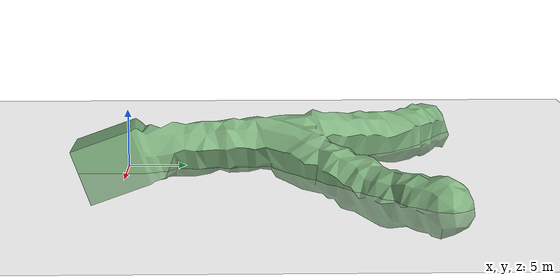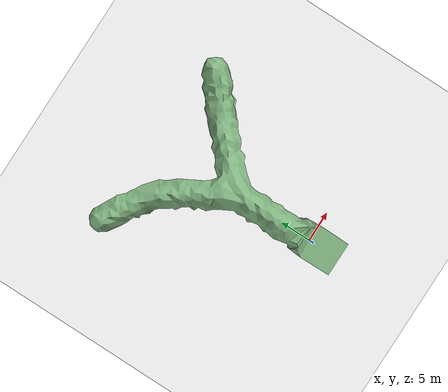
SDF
<sdf version="1.6">
 <world name="default">
  <scene><background>0.1 0.1 0.1 1</background><shadows>1</shadows><ambient>0.4 0.4 0.4 1</ambient></scene>
  <physics name="default_physics" default="0" type="ode">
   <ode>
    <solver>
     <type>quick</type>
     <iters>10</iters>
     <sor>1.3</sor>
     <use_dynamic_moi_rescaling>0</use_dynamic_moi_rescaling>
    </solver>
    <constraints>
     <cfm>0</cfm>
     <erp>0.2</erp>
     <contact_max_correcting_vel>10</contact_max_correcting_vel>
     <contact_surface_layer>0.001</contact_surface_layer>
    </constraints>
   </ode>
   <max_step_size>0.001</max_step_size>
   <real_time_factor>1</real_time_factor>
   <real_time_update_rate>1000</real_time_update_rate>
  </physics>
  <light name="directional_light_1" type="directional">
   <pose>0 20 20 0.1 0.1 0</pose>
   <diffuse>1 1 1 1</diffuse>
   <specular>1 1 1 1</specular>
   <attenuation><range>300</range></attenuation>
   <direction>0.1 0.1 -1</direction>
   <cast_shadows>0</cast_shadows>
  </light>
  <model name="y_tunnel">
   <pose>0.117183 -0.711964 -1.42665 0.34507 -0 0</pose>
   <static>1</static>
   <link name="y_tunnel_link">
    <collision name="y_tunnel_collision">
     <geometry><mesh><uri>model://y_tunnel/y_tunnel.dae</uri><scale>4 4 4</scale></mesh></geometry>
    </collision>
    <visual name="y_tunnel_visual">
     <geometry><mesh><uri>model://y_tunnel/y_tunnel.dae</uri><scale>4 4 4</scale></mesh></geometry>
     <cast_shadows>0</cast_shadows>
     <material>
      <ambient>0.3 0.5 0.3 1</ambient>
      <diffuse>0.5 0.7 0.5 1</diffuse>
      <specular>0.5 0.7 0.5 1</specular>
      <emissive>0 0 0 1</emissive>
     </material>
    </visual>
   </link>
  </model>
  <gravity>0 0 -9.81</gravity>
  <magnetic_field>6e-06 2.3e-05 -4.2e-05</magnetic_field>
  <atmosphere type="adiabatic"/>
  <spherical_coordinates>
   <surface_model>EARTH_WGS84</surface_model>
   <latitude_deg>0</latitude_deg>
   <longitude_deg>0</longitude_deg>
   <elevation>0</elevation>
   <heading_deg>0</heading_deg>
  </spherical_coordinates>
  <model name="ground_plane">
   <static>1</static>
   <link name="link">
    <collision name="collision">
     <geometry><plane><normal>0 0 1</normal><size>100 100</size></plane></geometry>
     <surface><friction><ode><mu>100</mu><mu2>50</mu2></ode></friction></surface>
    </collision>
    <visual name="visual">
     <cast_shadows>0</cast_shadows>
     <geometry><plane><normal>0 0 1</normal><size>100 100</size></plane></geometry>
     <material>
      <script><uri>file://media/materials/scripts/gazebo.material</uri><name>Gazebo/Grey</name></script>
     </material>
    </visual>
   </link>
   <pose>40.3557 7.42773 0 0 -0 0</pose>
  </model>
 </world>
</sdf>
